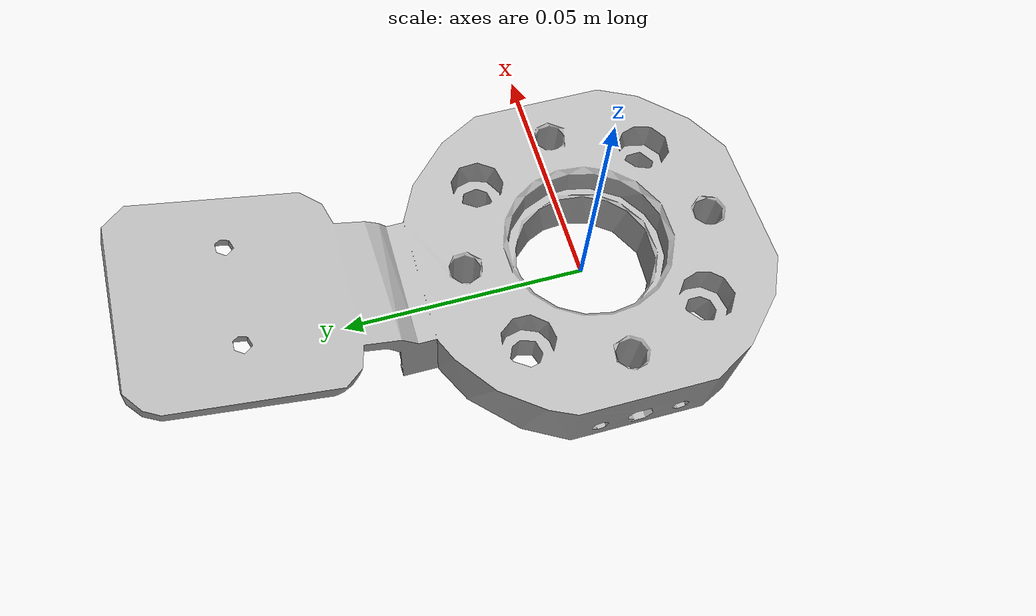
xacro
<?xml version="1.0" ?>
<robot name="kcare" xmlns:xacro="http://www.ros.org/wiki/xacro">

  <xacro:include filename="$(find kcare_description)/robots/common/link.xacro"/>
  <xacro:include filename="$(find kcare_description)/robots/hand_camera.urdf.xacro"/>

</robot>

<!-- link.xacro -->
<robot name="kcare" xmlns:xacro="http://www.ros.org/wiki/xacro">

  <xacro:include filename="$(find kcare_description)/robots/common/materials.xacro"/>

<xacro:macro name="common_link" params="
  name
  inertial_origin:='0 0 0'
  mass:='0.5'
  ixx:='0.002' iyy:='0.002' izz:='0.002'
  ixy:='0.0' iyz:='0.0' ixz:='0.0'
  mesh_file
  scale:='0.001 0.001 0.001'
  material:='silver'">

    <link name="${name}">
      <inertial>
        <origin xyz="${inertial_origin}" rpy="0 0 0"/>
        <mass value="${mass}"/>
        <inertia
          ixx="${ixx}" iyy="${iyy}" izz="${izz}"
          ixy="${ixy}" iyz="${iyz}" ixz="${ixz}"/>
      </inertial>
      <visual>
        <origin xyz="0 0 0" rpy="0 0 0"/>
        <geometry>
          <mesh filename="${mesh_file}" scale="${scale}"/>
        </geometry>
        <material name="${material}"/>
      </visual>
      <collision>
        <origin xyz="0 0 0" rpy="0 0 0"/>
        <geometry>
          <mesh filename="${mesh_file}" scale="${scale}"/>
        </geometry>
      </collision>
    </link>
  </xacro:macro>

</robot>

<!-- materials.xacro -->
<robot name="kcare" xmlns:xacro="http://www.ros.org/wiki/xacro">

<material name="silver">
  <color rgba="0.700 0.700 0.700 1.000"/>
</material>
<material name="black">
    <color rgba="0.2 0.2 0.2 1"/>
</material>
</robot>

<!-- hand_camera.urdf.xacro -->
<robot name="kcare" xmlns:xacro="http://ros.org/wiki/xacro">

  <xacro:property name="mesh_path" value="package://kcare_description/meshes/"/>
  <xacro:common_link
    name="hand_base"
    mesh_file="${mesh_path}tools/hand_base.stl"
  />

  <link name="hand_camera_link">
  </link>

  <joint name="hand_to_camera_fix_joint" type="fixed">
    <origin xyz="0.0 0.0 0.0" rpy="${-75 * pi/180} 0 0.0"/>
    <parent link="hand_base"/>
    <child link="hand_camera_link"/>
  </joint>

</robot>
